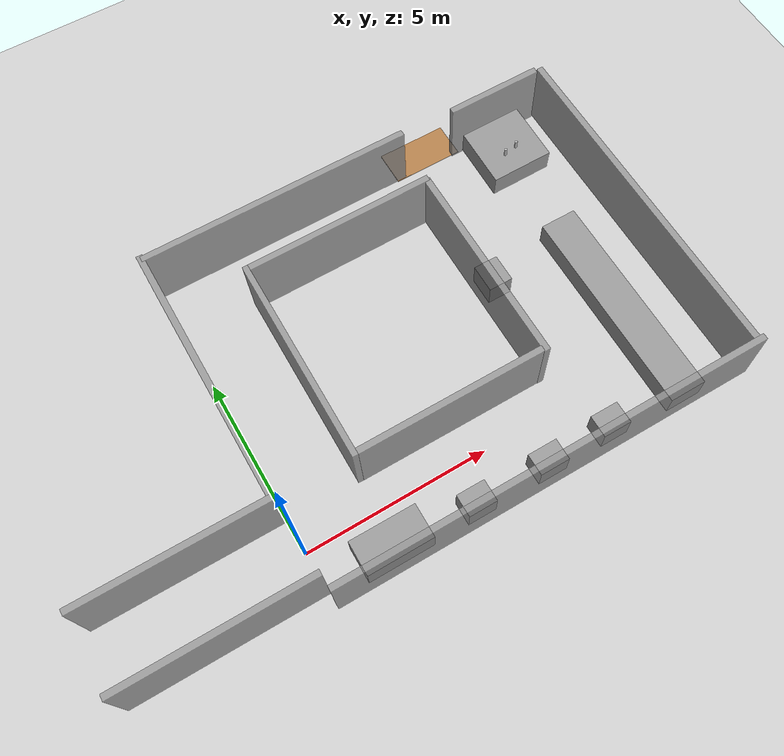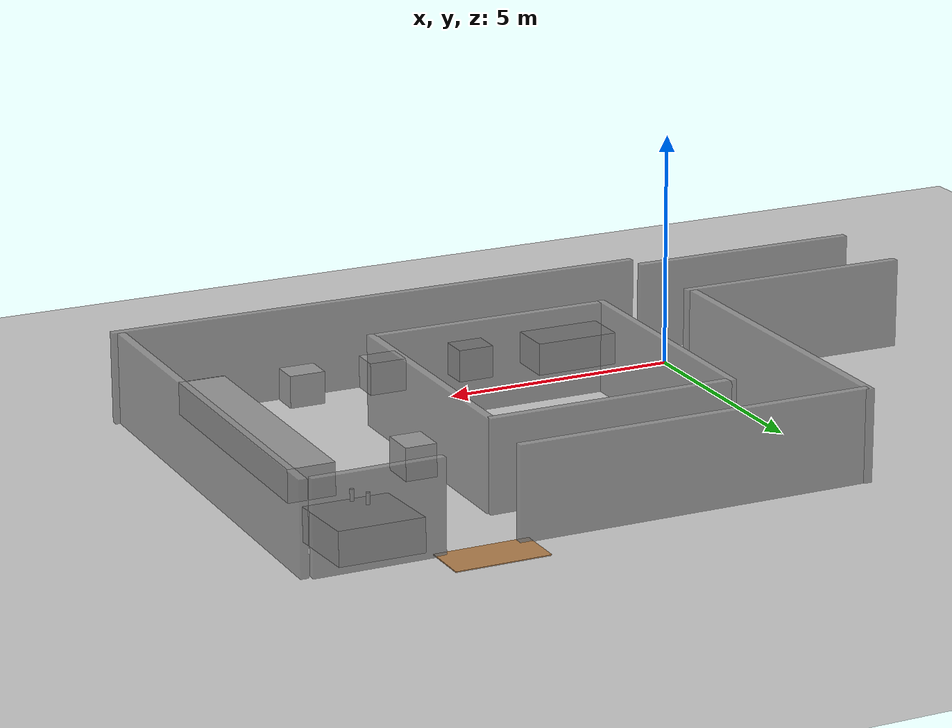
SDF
<sdf version="1.7">
 <world name="default">
  <physics type="ode">
   <ode>
    <solver>
     <type>quick</type>
     <iters>50</iters>
     <sor>1.4</sor>
     <use_dynamic_moi_rescaling>0</use_dynamic_moi_rescaling>
    </solver>
    <constraints>
     <cfm>0</cfm>
     <erp>0.2</erp>
     <contact_max_correcting_vel>100</contact_max_correcting_vel>
     <contact_surface_layer>0</contact_surface_layer>
    </constraints>
   </ode>
   <real_time_update_rate>1000</real_time_update_rate>
   <max_step_size>0.001</max_step_size>
   <real_time_factor>1</real_time_factor>
  </physics>
  <light name="sun" type="directional">
   <pose>0 0 8 0 -0 0</pose>
   <diffuse>0.8 0.8 0.8 1</diffuse>
   <specular>0.2 0.2 0.2 1</specular>
   <attenuation>
    <range>1000</range>
    <constant>0.9</constant>
    <linear>0.01</linear>
    <quadratic>0.001</quadratic>
   </attenuation>
   <direction>-0.5 0.1 -0.9</direction>
   <spot><inner_angle>0</inner_angle><outer_angle>0</outer_angle><falloff>0</falloff></spot>
  </light>
  <light name="ceiling_light" type="point">
   <pose>1.57075 -1.6124 1 0 -0 0</pose>
   <diffuse>0.5 0.5 0.5 1</diffuse>
   <specular>0.1 0.1 0.1 1</specular>
   <attenuation>
    <range>16</range>
    <constant>0.5</constant>
    <linear>0.2</linear>
    <quadratic>0.1</quadratic>
   </attenuation>
   <cast_shadows>0</cast_shadows>
   <direction>0 0 -1</direction>
   <spot><inner_angle>0</inner_angle><outer_angle>0</outer_angle><falloff>0</falloff></spot>
  </light>
  <model name="ground_plane">
   <static>1</static>
   <link name="link_ground_plane">
    <collision name="collision">
     <geometry><plane><normal>0 0 1</normal><size>100 100</size></plane></geometry>
     <surface>
      <contact><collide_bitmask>65535</collide_bitmask></contact>
      <friction><ode><mu>100</mu><mu2>50</mu2></ode></friction>
     </surface>
    </collision>
    <visual name="visual">
     <cast_shadows>0</cast_shadows>
     <geometry><plane><normal>0 0 1</normal><size>100 100</size></plane></geometry>
     <material>
      <script><uri>file://media/materials/scripts/gazebo.material</uri><name>Gazebo/Grey</name></script>
     </material>
    </visual>
   </link>
  </model>
  <gravity>0 0 -9.81</gravity>
  <magnetic_field>6e-06 2.3e-05 -4.2e-05</magnetic_field>
  <atmosphere type="adiabatic"/>
  <scene><ambient>0.4 0.4 0.4 1</ambient><background>0.7 0.7 0.7 1</background><shadows>1</shadows></scene>
  <spherical_coordinates>
   <surface_model>EARTH_WGS84</surface_model>
   <latitude_deg>0</latitude_deg>
   <longitude_deg>0</longitude_deg>
   <elevation>0</elevation>
   <heading_deg>0</heading_deg>
  </spherical_coordinates>
  <model name="wall_south_inside">
   <pose>4.60086 0.957465 0.964691 -1e-06 -0.000187 -0.003845</pose>
   <link name="link">
    <collision name="collision"><geometry><box><size>5.05847 0.169561 1.93007</size></box></geometry></collision>
    <gravity>0</gravity>
    <inertial>
     <mass>1</mass>
     <inertia>
      <ixx>0.166667</ixx>
      <ixy>0</ixy>
      <ixz>0</ixz>
      <iyy>0.166667</iyy>
      <iyz>0</iyz>
      <izz>0.166667</izz>
     </inertia>
    </inertial>
    <visual name="visual">
     <geometry><box><size>5.05847 0.169561 1.93007</size></box></geometry>
     <material>
      <script><name>Gazebo/Grey</name><uri>file://media/materials/scripts/gazebo.material</uri></script>
     </material>
     <transparency>0.15</transparency>
    </visual>
   </link>
   <static>1</static>
  </model>
  <model name="wall_south_outside_00">
   <pose>-2.46 -1.01 0.964691 0 -0.000187 -0.007321</pose>
   <link name="link">
    <collision name="collision"><geometry><box><size>5.07 0.169561 1.93007</size></box></geometry></collision>
    <gravity>0</gravity>
    <inertial>
     <mass>1</mass>
     <inertia>
      <ixx>0.166667</ixx>
      <ixy>0</ixy>
      <ixz>0</ixz>
      <iyy>0.166667</iyy>
      <iyz>0</iyz>
      <izz>0.166667</izz>
     </inertia>
    </inertial>
    <visual name="visual">
     <geometry><box><size>5.07 0.169561 1.93007</size></box></geometry>
     <material>
      <script><name>Gazebo/Grey</name><uri>file://media/materials/scripts/gazebo.material</uri></script>
     </material>
     <transparency>0.15</transparency>
    </visual>
   </link>
   <static>1</static>
  </model>
  <model name="wall_south_outside_10">
   <pose>5.96 -1.48 0.964691 0 -0.000187 -0.007321</pose>
   <link name="link">
    <collision name="collision"><geometry><box><size>11.8 0.169561 1.93007</size></box></geometry></collision>
    <gravity>0</gravity>
    <inertial>
     <mass>1</mass>
     <inertia>
      <ixx>0.166667</ixx>
      <ixy>0</ixy>
      <ixz>0</ixz>
      <iyy>0.166667</iyy>
      <iyz>0</iyz>
      <izz>0.166667</izz>
     </inertia>
    </inertial>
    <visual name="visual">
     <geometry><box><size>11.8 0.169561 1.93007</size></box></geometry>
     <material>
      <script><name>Gazebo/Grey</name><uri>file://media/materials/scripts/gazebo.material</uri></script>
     </material>
     <transparency>0.15</transparency>
    </visual>
   </link>
   <static>1</static>
  </model>
  <model name="wall_south_outside_01">
   <pose>-2.49604 1.02223 0.96468 0 -0.000187 -0.007321</pose>
   <link name="link">
    <collision name="collision"><geometry><box><size>5.1 0.169561 1.93007</size></box></geometry></collision>
    <gravity>0</gravity>
    <inertial>
     <mass>1</mass>
     <inertia>
      <ixx>0.166667</ixx>
      <ixy>0</ixy>
      <ixz>0</ixz>
      <iyy>0.166667</iyy>
      <iyz>0</iyz>
      <izz>0.166667</izz>
     </inertia>
    </inertial>
    <visual name="visual">
     <geometry><box><size>5.1 0.169561 1.93007</size></box></geometry>
     <material>
      <script><name>Gazebo/Grey</name><uri>file://media/materials/scripts/gazebo.material</uri></script>
     </material>
     <transparency>0.15</transparency>
    </visual>
   </link>
   <static>1</static>
  </model>
  <model name="wall_west_inside">
   <pose>2.02152 3.74164 0.966801 -0.000537 1e-05 -0.007231</pose>
   <link name="link">
    <collision name="collision"><geometry><box><size>0.144178 5.71 1.93634</size></box></geometry></collision>
    <gravity>0</gravity>
    <inertial>
     <mass>1.42401</mass>
     <inertia><ixx>3.53234</ixx><ixy>0</ixy><ixz>0</ixz><iyy>0.447399</iyy><iyz>0</iyz><izz>3.08987</izz></inertia>
    </inertial>
    <visual name="visual">
     <geometry><box><size>0.144178 5.71 1.93634</size></box></geometry>
     <material>
      <script><name>Gazebo/Grey</name><uri>file://media/materials/scripts/gazebo.material</uri></script>
     </material>
     <transparency>0.15</transparency>
    </visual>
   </link>
   <static>1</static>
  </model>
  <model name="wall_west_outside">
   <pose>-0.080146 4.6 0.96275 0 -0.000537 0</pose>
   <link name="link">
    <collision name="collision"><geometry><box><size>0.169301 7.24 1.92589</size></box></geometry></collision>
    <gravity>0</gravity>
    <inertial>
     <mass>1.42401</mass>
     <inertia><ixx>3.53234</ixx><ixy>0</ixy><ixz>0</ixz><iyy>0.447399</iyy><iyz>0</iyz><izz>3.08987</izz></inertia>
    </inertial>
    <visual name="visual">
     <geometry><box><size>0.169301 7.24 1.92589</size></box></geometry>
     <material>
      <script><name>Gazebo/Grey</name><uri>file://media/materials/scripts/gazebo.material</uri></script>
     </material>
     <transparency>0.15</transparency>
    </visual>
   </link>
   <static>1</static>
  </model>
  <model name="wall_north_inside">
   <pose>4.67561 6.5208 0.96794 0.003235 -0.00143 0.002266</pose>
   <link name="link">
    <collision name="collision"><geometry><box><size>5.2 0.169561 1.93007</size></box></geometry></collision>
    <gravity>0</gravity>
    <inertial>
     <mass>1</mass>
     <inertia>
      <ixx>0.166667</ixx>
      <ixy>0</ixy>
      <ixz>0</ixz>
      <iyy>0.166667</iyy>
      <iyz>0</iyz>
      <izz>0.166667</izz>
     </inertia>
    </inertial>
    <visual name="visual">
     <geometry><box><size>5.2 0.169561 1.93007</size></box></geometry>
     <material>
      <script><name>Gazebo/Grey</name><uri>file://media/materials/scripts/gazebo.material</uri></script>
     </material>
     <transparency>0.15</transparency>
    </visual>
   </link>
   <static>1</static>
  </model>
  <model name="wall_north_outside_00">
   <pose>10.25 8.045 0.96794 0.003235 -0.00143 0.002266</pose>
   <link name="link">
    <collision name="collision"><geometry><box><size>2.673 0.169561 1.93007</size></box></geometry></collision>
    <gravity>0</gravity>
    <inertial>
     <mass>1</mass>
     <inertia>
      <ixx>0.166667</ixx>
      <ixy>0</ixy>
      <ixz>0</ixz>
      <iyy>0.166667</iyy>
      <iyz>0</iyz>
      <izz>0.166667</izz>
     </inertia>
    </inertial>
    <visual name="visual">
     <geometry><box><size>2.673 0.169561 1.93007</size></box></geometry>
     <material>
      <script><name>Gazebo/Grey</name><uri>file://media/materials/scripts/gazebo.material</uri></script>
     </material>
     <transparency>0.15</transparency>
    </visual>
   </link>
   <static>1</static>
  </model>
  <model name="wall_north_outside_10">
   <pose>3.67207 8.09898 0.968096 0.00324 -0.001419 -0.000946</pose>
   <link name="link">
    <collision name="collision"><geometry><box><size>7.5 0.169561 1.93007</size></box></geometry></collision>
    <gravity>0</gravity>
    <inertial>
     <mass>1</mass>
     <inertia>
      <ixx>0.166667</ixx>
      <ixy>0</ixy>
      <ixz>0</ixz>
      <iyy>0.166667</iyy>
      <iyz>0</iyz>
      <izz>0.166667</izz>
     </inertia>
    </inertial>
    <visual name="visual">
     <geometry><box><size>7.5 0.169561 1.93007</size></box></geometry>
     <material>
      <script><name>Gazebo/Grey</name><uri>file://media/materials/scripts/gazebo.material</uri></script>
     </material>
     <transparency>0.15</transparency>
    </visual>
   </link>
   <static>1</static>
  </model>
  <model name="wall_east_inside">
   <pose>7.20882 3.68075 0.962688 0.000135 0 -0.004423</pose>
   <link name="link">
    <collision name="collision"><geometry><box><size>0.169301 5.66 1.92589</size></box></geometry></collision>
    <gravity>0</gravity>
    <inertial>
     <mass>1</mass>
     <inertia>
      <ixx>0.166667</ixx>
      <ixy>0</ixy>
      <ixz>0</ixz>
      <iyy>0.166667</iyy>
      <iyz>0</iyz>
      <izz>0.166667</izz>
     </inertia>
    </inertial>
    <visual name="visual">
     <geometry><box><size>0.169301 5.66 1.92589</size></box></geometry>
     <material>
      <script><name>Gazebo/Grey</name><uri>file://media/materials/scripts/gazebo.material</uri></script>
     </material>
     <transparency>0.15</transparency>
    </visual>
   </link>
   <static>1</static>
  </model>
  <model name="wall_east_outside">
   <pose>11.7 3.2825 0.962688 0.000135 0 -0.004423</pose>
   <link name="link">
    <collision name="collision"><geometry><box><size>0.169301 9.525 1.92589</size></box></geometry></collision>
    <gravity>0</gravity>
    <inertial>
     <mass>1</mass>
     <inertia>
      <ixx>0.166667</ixx>
      <ixy>0</ixy>
      <ixz>0</ixz>
      <iyy>0.166667</iyy>
      <iyz>0</iyz>
      <izz>0.166667</izz>
     </inertia>
    </inertial>
    <visual name="visual">
     <geometry><box><size>0.169301 9.525 1.92589</size></box></geometry>
     <material>
      <script><name>Gazebo/Grey</name><uri>file://media/materials/scripts/gazebo.material</uri></script>
     </material>
     <transparency>0.15</transparency>
    </visual>
   </link>
   <static>1</static>
  </model>
  <model name="table_below_elevator">
   <pose>7.62789 3.83335 0.346972 0 -0 -1.57522</pose>
   <static>1</static>
   <link name="link">
    <inertial>
     <mass>1</mass>
     <inertia>
      <ixx>0.166667</ixx>
      <ixy>0</ixy>
      <ixz>0</ixz>
      <iyy>0.166667</iyy>
      <iyz>0</iyz>
      <izz>0.166667</izz>
     </inertia>
    </inertial>
    <collision name="collision"><geometry><box><size>0.770381 0.66746 0.693943</size></box></geometry></collision>
    <visual name="visual">
     <geometry><box><size>0.770381 0.66746 0.693943</size></box></geometry>
     <material>
      <script><name>Gazebo/Grey</name><uri>file://media/materials/scripts/gazebo.material</uri></script>
     </material>
    </visual>
   </link>
  </model>
  <model name="rampage_table">
   <pose>9.99131 1.44784 0.350001 -3.9e-05 -0.002459 1.56588</pose>
   <static>1</static>
   <link name="link">
    <inertial>
     <mass>1</mass>
     <inertia>
      <ixx>0.166667</ixx>
      <ixy>0</ixy>
      <ixz>0</ixz>
      <iyy>0.166667</iyy>
      <iyz>0</iyz>
      <izz>0.166667</izz>
     </inertia>
    </inertial>
    <collision name="collision"><geometry><box><size>5.8 1 0.689803</size></box></geometry></collision>
    <visual name="visual">
     <geometry><box><size>5.8 1 0.689803</size></box></geometry>
     <material>
      <script><name>Gazebo/Grey</name><uri>file://media/materials/scripts/gazebo.material</uri></script>
     </material>
    </visual>
   </link>
  </model>
  <model name="pringles">
   <static>0</static>
   <link name="link">
    <inertial>
     <mass>0.25</mass>
     <inertia><ixx>0</ixx><ixy>0</ixy><ixz>0</ixz><iyy>0</iyy><iyz>0</iyz><izz>0</izz></inertia>
    </inertial>
    <collision name="collision">
     <geometry><cylinder><radius>0.04</radius><length>0.235</length></cylinder></geometry>
    </collision>
    <visual name="visual">
     <geometry><cylinder><radius>0.04</radius><length>0.235</length></cylinder></geometry>
     <material>
      <script>
       <uri>model://pringles/material/scripts</uri>
       <uri>model://pringles/material/textures</uri>
       <name>Custom/pringles</name>
      </script>
     </material>
    </visual>
    <velocity_decay><linear>0</linear><angular>0</angular></velocity_decay>
   </link>
   <pose>9.9037 6.8 0.85 0 0 0</pose>
  </model>
  <model name="pringles2">
   <static>0</static>
   <link name="link">
    <inertial>
     <mass>0.25</mass>
     <inertia><ixx>0</ixx><ixy>0</ixy><ixz>0</ixz><iyy>0</iyy><iyz>0</iyz><izz>0</izz></inertia>
    </inertial>
    <collision name="collision">
     <pose>0 0 0.12 -3.14159 -0 0</pose>
     <geometry><cylinder><radius>0.04</radius><length>0.235</length></cylinder></geometry>
    </collision>
    <visual name="visual">
     <pose>0 0 0.12 -3.14159 -0 0</pose>
     <geometry><cylinder><radius>0.04</radius><length>0.235</length></cylinder></geometry>
     <material>
      <script>
       <uri>model://pringles2/material/scripts</uri>
       <uri>model://pringles2/material/textures</uri>
       <name>Custom/pringles2</name>
      </script>
     </material>
    </visual>
    <velocity_decay><linear>0</linear><angular>0</angular></velocity_decay>
   </link>
   <pose>10.2309 6.8 0.85 0 0 0</pose>
  </model>
  <model name="table_beside_stairs">
   <link name="link">
    <inertial>
     <mass>1</mass>
     <inertia>
      <ixx>0.166667</ixx>
      <ixy>0</ixy>
      <ixz>0</ixz>
      <iyy>0.166667</iyy>
      <iyz>0</iyz>
      <izz>0.166667</izz>
     </inertia>
    </inertial>
    <collision name="collision"><geometry><box><size>1.68131 1.75754 0.693943</size></box></geometry></collision>
    <visual name="visual">
     <geometry><box><size>1.68131 1.75754 0.693943</size></box></geometry>
     <material>
      <script><name>Gazebo/Grey</name><uri>file://media/materials/scripts/gazebo.material</uri></script>
     </material>
    </visual>
   </link>
   <pose>10.1317 7.11123 0.369619 0.007537 0.050074 -1.56807</pose>
  </model>
  <model name="big_table_00_wall_south">
   <link name="link">
    <inertial>
     <mass>1</mass>
     <inertia>
      <ixx>0.166667</ixx>
      <ixy>0</ixy>
      <ixz>0</ixz>
      <iyy>0.166667</iyy>
      <iyz>0</iyz>
      <izz>0.166667</izz>
     </inertia>
    </inertial>
    <collision name="collision"><geometry><box><size>0.934341 1.78936 0.693943</size></box></geometry></collision>
    <visual name="visual">
     <geometry><box><size>0.934341 1.78936 0.693943</size></box></geometry>
     <material>
      <script><name>Gazebo/Grey</name><uri>file://media/materials/scripts/gazebo.material</uri></script>
     </material>
    </visual>
   </link>
   <pose>1.85466 -0.897968 0.346971 0 0 -1.57812</pose>
  </model>
  <model name="small_table_02_wall_south">
   <link name="link">
    <inertial>
     <mass>1</mass>
     <inertia>
      <ixx>0.166667</ixx>
      <ixy>0</ixy>
      <ixz>0</ixz>
      <iyy>0.166667</iyy>
      <iyz>0</iyz>
      <izz>0.166667</izz>
     </inertia>
    </inertial>
    <collision name="collision">
     <geometry><box><size>0.770381 0.608258 0.693943</size></box></geometry>
    </collision>
    <visual name="visual">
     <geometry><box><size>0.770381 0.608258 0.693943</size></box></geometry>
     <material>
      <script><name>Gazebo/Grey</name><uri>file://media/materials/scripts/gazebo.material</uri></script>
     </material>
    </visual>
   </link>
   <pose>7.90798 -1.07578 0.346971 0 -0 -0.007332</pose>
  </model>
  <model name="small_table_00_wall_south">
   <link name="link">
    <inertial>
     <mass>1</mass>
     <inertia>
      <ixx>0.166667</ixx>
      <ixy>0</ixy>
      <ixz>0</ixz>
      <iyy>0.166667</iyy>
      <iyz>0</iyz>
      <izz>0.166667</izz>
     </inertia>
    </inertial>
    <collision name="collision">
     <geometry><box><size>0.773654 0.608258 0.693943</size></box></geometry>
    </collision>
    <visual name="visual">
     <geometry><box><size>0.773654 0.608258 0.693943</size></box></geometry>
     <material>
      <script><name>Gazebo/Grey</name><uri>file://media/materials/scripts/gazebo.material</uri></script>
     </material>
    </visual>
   </link>
   <pose>4.06464 -1.07708 0.346971 0 -0 -0.007321</pose>
  </model>
  <model name="small_table_01_wall_south">
   <link name="link">
    <inertial>
     <mass>1</mass>
     <inertia>
      <ixx>0.166667</ixx>
      <ixy>0</ixy>
      <ixz>0</ixz>
      <iyy>0.166667</iyy>
      <iyz>0</iyz>
      <izz>0.166667</izz>
     </inertia>
    </inertial>
    <collision name="collision"><geometry><box><size>0.802706 0.59273 0.693943</size></box></geometry></collision>
    <visual name="visual">
     <geometry><box><size>0.802706 0.59273 0.693943</size></box></geometry>
     <material>
      <script><name>Gazebo/Grey</name><uri>file://media/materials/scripts/gazebo.material</uri></script>
     </material>
    </visual>
   </link>
   <pose>6.07793 -1.0997 0.346971 0 -0 -0.007321</pose>
  </model>
  <model name="bauzil_stairs">
   <static>1</static>
   <link name="step_1">
    <collision name="collision">
     <pose>2.01 -0.059996 0.59 0 -0 0</pose>
     <geometry><box><size>0.982111 1.96422 0.02</size></box></geometry>
    </collision>
    <visual name="visual">
     <pose>2.01 -0.059996 0.59 0 -0 0</pose>
     <geometry><box><size>0.982111 1.96422 0.02</size></box></geometry>
     <material>
      <script><uri>file://media/materials/scripts/gazebo.material</uri><name>Gazebo/Wood</name></script>
     </material>
    </visual>
    <static>1</static>
   </link>
   <link name="step_2">
    <collision name="collision">
     <pose>1.36 0.040004 0.49 0 -0 0</pose>
     <geometry><box><size>0.288506 0.961687 0.02</size></box></geometry>
    </collision>
    <visual name="visual">
     <pose>1.36 0.040004 0.49 0 -0 0</pose>
     <geometry><box><size>0.288506 0.961687 0.02</size></box></geometry>
     <material>
      <script><uri>file://media/materials/scripts/gazebo.material</uri><name>Gazebo/Wood</name></script>
     </material>
    </visual>
    <static>1</static>
   </link>
   <link name="step_3">
    <collision name="collision">
     <pose>1.06 0.040004 0.39 0 -0 0</pose>
     <geometry><box><size>0.288506 0.961687 0.02</size></box></geometry>
    </collision>
    <visual name="visual">
     <pose>1.06 0.040004 0.39 0 -0 0</pose>
     <geometry><box><size>0.288506 0.961687 0.02</size></box></geometry>
     <material>
      <script><uri>file://media/materials/scripts/gazebo.material</uri><name>Gazebo/Wood</name></script>
     </material>
    </visual>
    <static>1</static>
   </link>
   <link name="step_4">
    <collision name="collision">
     <pose>0.76 0.040004 0.29 0 -0 0</pose>
     <geometry><box><size>0.288506 0.961687 0.02</size></box></geometry>
    </collision>
    <visual name="visual">
     <pose>0.76 0.040004 0.29 0 -0 0</pose>
     <geometry><box><size>0.288506 0.961687 0.02</size></box></geometry>
     <material>
      <script><uri>file://media/materials/scripts/gazebo.material</uri><name>Gazebo/Wood</name></script>
     </material>
    </visual>
    <static>1</static>
   </link>
   <link name="step_5">
    <collision name="collision">
     <pose>0.46 0.040004 0.19 0 -0 0</pose>
     <geometry><box><size>0.288506 0.961687 0.02</size></box></geometry>
    </collision>
    <visual name="visual">
     <pose>0.46 0.040004 0.19 0 -0 0</pose>
     <geometry><box><size>0.288506 0.961687 0.02</size></box></geometry>
     <material>
      <script><uri>file://media/materials/scripts/gazebo.material</uri><name>Gazebo/Wood</name></script>
     </material>
    </visual>
    <static>1</static>
   </link>
   <link name="step_6">
    <collision name="collision">
     <pose>0.16 0.040004 0.09 0 -0 0</pose>
     <geometry><box><size>0.288506 0.961687 0.02</size></box></geometry>
    </collision>
    <visual name="visual">
     <pose>0.16 0.040004 0.09 0 -0 0</pose>
     <geometry><box><size>0.288506 0.961687 0.02</size></box></geometry>
     <material>
      <script><uri>file://media/materials/scripts/gazebo.material</uri><name>Gazebo/Wood</name></script>
     </material>
    </visual>
    <static>1</static>
   </link>
   <pose>8.20529 10.4913 -0.580353 0 0 -1.57198</pose>
  </model>
 </world>
</sdf>
